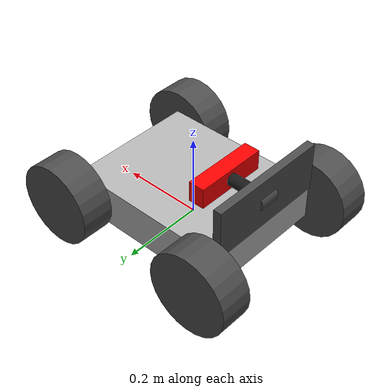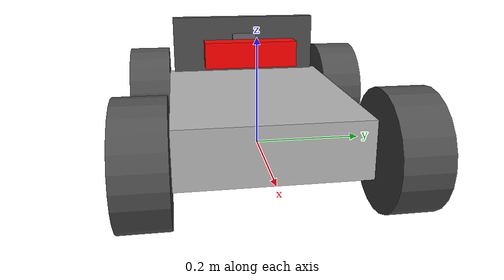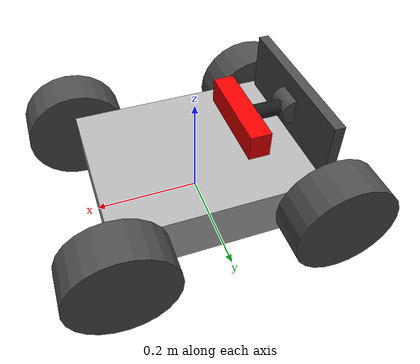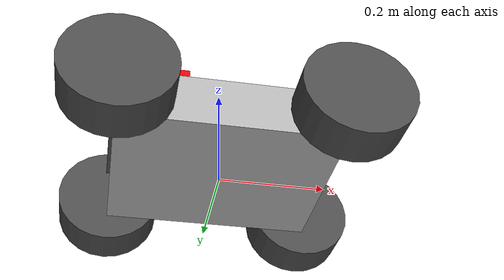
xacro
<?xml version="1.0"?>
<robot xmlns:xacro="http://www.ros.org/wiki/xacro" name="runner_bot">

  <xacro:arg name="robot_ns" default="runner1"/>

  <xacro:include filename="$(find sr_description)/urdf/material.urdf.xacro"/>
  <xacro:include filename="$(find sr_description)/urdf/base.urdf.xacro"/>
  <xacro:include filename="$(find sr_description)/urdf/wheel.urdf.xacro"/>
  <xacro:include filename="$(find sr_description)/urdf/wall.urdf.xacro"/>
  <xacro:include filename="$(find sr_description)/urdf/actuator.urdf.xacro"/>
  <xacro:include filename="$(find sr_description)/urdf/runner_gazebo.urdf.xacro"/>

  <xacro:create_base/>
  <xacro:create_wheels/>
  <xacro:create_piston/>
  <xacro:create_wall/>
  <xacro:gazebo_setup_runner robot_ns="$(arg robot_ns)" />

</robot>

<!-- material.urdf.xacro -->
<robot xmlns:xacro="http://www.ros.org/wiki/xacro" name="materials">

  <!-- ========================================
       MATERIALS AND COLORS
       ======================================== -->

  <material name="grey">
    <color rgba="0.7 0.7 0.7 1.0"/>
  </material>

  <material name="dark_grey">
    <color rgba="0.3 0.3 0.3 1.0"/>
  </material>

  <material name="black">
    <color rgba="0.1 0.1 0.1 1.0"/>
  </material>

  <material name="red">
    <color rgba="1.0 0.0 0.0 1.0"/>
  </material>

  <material name="green">
    <color rgba="0.0 1.0 0.0 1.0"/>
  </material>

  <material name="blue">
    <color rgba="0.0 0.0 1.0 1.0"/>
  </material>

</robot>

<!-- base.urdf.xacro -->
<robot xmlns:xacro="http://www.ros.org/wiki/xacro">

  <xacro:macro name="create_base">

    <!-- Ground reference frame -->
    <link name="base_footprint"/>

    <!-- Actual robot body -->
    <link name="base_link">
      <visual>
        <origin xyz="0 0 0"/>
        <geometry>
          <box size="0.40 0.32 0.1"/>
        </geometry>
        <material name="grey"/>
      </visual>

      <collision>
        <origin xyz="0 0 0"/>
        <geometry>
          <box size="0.40 0.32 0.1"/>
        </geometry>
      </collision>

      <inertial>
        <origin xyz="0 0 0"/>
        <mass value="3.0"/>
        <inertia ixx="0.1" iyy="0.1" izz="0.1"
                ixy="0" ixz="0" iyz="0"/>
      </inertial>
    </link>

    <!-- base_link sits above ground -->
    <joint name="base_footprint_to_base_link" type="fixed">
      <parent link="base_footprint"/>
      <child link="base_link"/>
      <origin xyz="0 0 0.05"/>
    </joint>

    <!-- ================= ARM MOUNT ================= -->

    <link name="arm_base_link"/>

    <joint name="arm_mount_joint" type="fixed">
      <parent link="base_link"/>
      <child link="arm_base_link"/>
      <origin xyz="0.16 0 0.06"/>
    </joint>

  </xacro:macro>

</robot>

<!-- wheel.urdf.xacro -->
<robot xmlns:xacro="http://www.ros.org/wiki/xacro">

  <xacro:macro name="create_wheels">

    <!-- ================= FRONT LEFT WHEEL ================= -->
    <!-- Position: +X (front), +Y (left) -->
    <link name="wheel_fl_link">
      <visual>
        <origin xyz="0 0 0" rpy="1.5708 0 0"/>
        <geometry>
          <cylinder radius="0.1" length="0.08"/>
        </geometry>
        <material name="dark_grey"/>
      </visual>

      <collision>
        <origin xyz="0 0 0" rpy="1.5708 0 0"/>
        <geometry>
          <cylinder radius="0.1" length="0.08"/>
        </geometry>
      </collision>

      <inertial>
        <origin xyz="0 0 0"/>
        <mass value="0.5"/>
        <inertia ixx="0.000417" iyy="0.0005" izz="0.000417" ixy="0" ixz="0" iyz="0"/>
      </inertial>
    </link>

    <!-- Front Left Joint -->
    <joint name="wheel_fl_joint" type="continuous">
      <parent link="base_link"/>
      <child link="wheel_fl_link"/>
      <origin xyz="0.20 0.20 0.0" rpy="0 0 0"/>
      <axis xyz="0 1 0"/>
      <limit effort="100.0" velocity="40.0" lower="-1000.0" upper="1000.0"/>
      <dynamics damping="0.05" friction="0.1"/>
    </joint>

    <!-- ================= FRONT RIGHT WHEEL ================= -->
    <!-- Position: +X (front), -Y (right) -->
    <link name="wheel_fr_link">
      <visual>
        <origin xyz="0 0 0" rpy="1.5708 0 0"/>
        <geometry>
          <cylinder radius="0.1" length="0.08"/>
        </geometry>
        <material name="dark_grey"/>
      </visual>

      <collision>
        <origin xyz="0 0 0" rpy="1.5708 0 0"/>
        <geometry>
          <cylinder radius="0.1" length="0.08"/>
        </geometry>
      </collision>

      <inertial>
        <origin xyz="0 0 0"/>
        <mass value="0.5"/>
        <inertia ixx="0.000417" iyy="0.0005" izz="0.000417" ixy="0" ixz="0" iyz="0"/>
      </inertial>
    </link>

    <!-- Front Right Joint -->
    <joint name="wheel_fr_joint" type="continuous">
      <parent link="base_link"/>
      <child link="wheel_fr_link"/>
      <origin xyz="0.20 -0.20 0.0" rpy="0 0 0"/>
      <axis xyz="0 1 0"/>
      <limit effort="100.0" velocity="40.0" lower="-1000.0" upper="1000.0"/>
      <dynamics damping="0.05" friction="0.1"/>
    </joint>

    <!-- ================= REAR LEFT WHEEL ================= -->
    <!-- Position: -X (back), +Y (left) -->
    <link name="wheel_bl_link">
      <visual>
        <origin xyz="0 0 0" rpy="1.5708 0 0"/>
        <geometry>
          <cylinder radius="0.1" length="0.08"/>
        </geometry>
        <material name="dark_grey"/>
      </visual>

      <collision>
        <origin xyz="0 0 0" rpy="1.5708 0 0"/>
        <geometry>
          <cylinder radius="0.1" length="0.08"/>
        </geometry>
      </collision>

      <inertial>
        <origin xyz="0 0 0"/>
        <mass value="0.5"/>
        <inertia ixx="0.000417" iyy="0.0005" izz="0.000417" ixy="0" ixz="0" iyz="0"/>
      </inertial>
    </link>

    <!-- Rear Left Joint -->
    <joint name="wheel_bl_joint" type="continuous">
      <parent link="base_link"/>
      <child link="wheel_bl_link"/>
      <origin xyz="-0.20 0.20 0.0" rpy="0 0 0"/>
      <axis xyz="0 1 0"/>
      <limit effort="100.0" velocity="40.0" lower="-1000.0" upper="1000.0"/>
      <dynamics damping="0.05" friction="0.1"/>
    </joint>

    <!-- ================= REAR RIGHT WHEEL ================= -->
    <!-- Position: -X (back), -Y (right) -->
    <link name="wheel_br_link">
      <visual>
        <origin xyz="0 0 0" rpy="1.5708 0 0"/>
        <geometry>
          <cylinder radius="0.1" length="0.08"/>
        </geometry>
        <material name="dark_grey"/>
      </visual>

      <collision>
        <origin xyz="0 0 0" rpy="1.5708 0 0"/>
        <geometry>
          <cylinder radius="0.1" length="0.08"/>
        </geometry>
      </collision>

      <inertial>
        <origin xyz="0 0 0"/>
        <mass value="0.5"/>
        <inertia ixx="0.000417" iyy="0.0005" izz="0.000417" ixy="0" ixz="0" iyz="0"/>
      </inertial>
    </link>

    <!-- Rear Right Joint -->
    <joint name="wheel_br_joint" type="continuous">
      <parent link="base_link"/>
      <child link="wheel_br_link"/>
      <origin xyz="-0.20 -0.20 0.0" rpy="0 0 0"/>
      <axis xyz="0 1 0"/>
      <limit effort="100.0" velocity="40.0" lower="-1000.0" upper="1000.0"/>
      <dynamics damping="0.05" friction="0.1"/>
    </joint>

  </xacro:macro>

</robot>

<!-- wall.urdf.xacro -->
<robot xmlns:xacro="http://www.ros.org/wiki/xacro" name="wall">

  <!-- ========================================
       BACK WALL - FOR PISTON MOUNTING
       L-shaped back barrier on top of chassis
       ======================================== -->

  <!-- Wall parameters -->
  <xacro:property name="wall_length" value="0.30"/>      <!-- Full width of chassis -->
  <xacro:property name="wall_height" value="0.12"/>      <!-- Height of wall -->
  <xacro:property name="wall_thickness" value="0.02"/>   <!-- Thickness -->
  <xacro:property name="wall_mass" value="1.0"/>

  <xacro:macro name="create_wall">

    <!-- ===== BACK WALL (L-shaped support) ===== -->
    <link name="back_wall">
      <inertial>
        <origin xyz="0 0 0" rpy="0 0 0"/>
        <mass value="${wall_mass}"/>
        <!-- Vertical wall inertia -->
        <inertia
          ixx="${wall_mass * (wall_height*wall_height + wall_thickness*wall_thickness) / 12}"
          iyy="${wall_mass * (wall_length*wall_length + wall_thickness*wall_thickness) / 12}"
          izz="${wall_mass * (wall_length*wall_length + wall_height*wall_height) / 12}"
          ixy="0" ixz="0" iyz="0"/>
      </inertial>

      <!-- Visual: Vertical rectangular wall -->
      <visual>
        <!-- Wall positioned at back center, goes up -->
        <origin xyz="0 ${-wall_length/2} ${wall_height/2}" rpy="0 0 0"/>
        <geometry>
          <box size="${wall_thickness} ${wall_length} ${wall_height}"/>
        </geometry>
        <material name="dark_grey"/>
      </visual>

      <!-- Collision: Same wall shape -->
      <collision>
        <origin xyz="0 ${-wall_length/2} ${wall_height/2}" rpy="0 0 0"/>
        <geometry>
          <box size="${wall_thickness} ${wall_length} ${wall_height}"/>
        </geometry>
      </collision>
    </link>

    <!-- Mount wall on top of chassis at back -->
    <joint name="wall_joint" type="fixed">
      <parent link="base_link"/>
      <child link="back_wall"/>
      <!-- Back of chassis, on top -->
      <origin xyz="${-0.2} ${wall_length/2} ${0.045}" rpy="0 0 0"/>
    </joint>

  </xacro:macro>

</robot>

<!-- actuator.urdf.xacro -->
<robot xmlns:xacro="http://www.ros.org/wiki/xacro" name="piston">

  <!-- Piston parameters -->
  <xacro:property name="piston_base_length" value="0.05"/>
  <xacro:property name="piston_rod_length" value="0.1"/>
  <xacro:property name="piston_rod_radius" value="0.015"/>
  <xacro:property name="piston_base_radius" value="0.025"/>
  <xacro:property name="piston_mass" value="2.0"/>
  <xacro:property name="chassis_length" value="0.32"/>

  <xacro:macro name="create_piston">

    <!-- ================= BASE ================= -->
    <link name="piston_base">
      <inertial>
        <origin xyz="0 0 0"/>
        <mass value="0.3"/>
        <inertia ixx="0.001" iyy="0.001" izz="0.001"
                 ixy="0" ixz="0" iyz="0"/>
      </inertial>

      <visual>
        <origin xyz="0 0 0" rpy="1.5708 0 0"/>
        <geometry>
          <cylinder radius="${piston_base_radius}"
                    length="${piston_base_length}"/>
        </geometry>
        <material name="dark_grey"/>
      </visual>

      <collision>
        <origin xyz="0 0 0" rpy="1.5708 0 0"/>
        <geometry>
          <cylinder radius="${piston_base_radius}"
                    length="${piston_base_length}"/>
        </geometry>
      </collision>
    </link>

    <!-- Fixed to wall -->
    <joint name="piston_base_joint" type="fixed">
      <parent link="back_wall"/>
      <child link="piston_base"/>
      <origin xyz="0.01 -0.15 0.06"/>
    </joint>

    <!-- ================= ROD ================= -->
    <link name="piston_rod">
      <inertial>
        <origin xyz="${piston_rod_length/2} 0 0" rpy="0 0 0"/>
        <mass value="${piston_mass}"/>
        <inertia
          ixx="${piston_mass * piston_rod_radius * piston_rod_radius / 4}"
          iyy="${piston_mass * (piston_rod_radius*piston_rod_radius + piston_rod_length*piston_rod_length) / 12}"
          izz="${piston_mass * (piston_rod_radius*piston_rod_radius + piston_rod_length*piston_rod_length) / 12}"
          ixy="0" ixz="0" iyz="0"/>
      </inertial>

      <!-- Rod starts at joint, extends forward -->
      <visual>
        <origin xyz="${piston_rod_length/2} 0 0" rpy="0 1.5708 0"/>
        <geometry>
          <cylinder radius="${piston_rod_radius}" length="${piston_rod_length}"/>
        </geometry>
        <material name="black"/>
      </visual>

      <collision>
        <origin xyz="${piston_rod_length/2} 0 0" rpy="0 1.5708 0"/>
        <geometry>
          <cylinder radius="${piston_rod_radius}" length="${piston_rod_length}"/>
        </geometry>
      </collision>
    </link>

    <!-- ================= PRISMATIC JOINT ================= -->
    <joint name="piston_rod_joint" type="prismatic">
      <parent link="piston_base"/>
      <child link="piston_rod"/>
      <origin xyz="0 0 0"/>
      <axis xyz="1 0 0"/>

      <!-- Starts retracted at 0 -->
      <limit lower="0" upper="${chassis_length}"
             effort="100" velocity="0.5"/>

      <dynamics damping="10" friction="0.5"/>
    </joint>

    <!-- ================= PUSHER HEAD ================= -->
    <link name="piston_head">
      <inertial>
        <origin xyz="0 0 0"/>
        <mass value="0.2"/>
        <inertia ixx="0.001" iyy="0.001" izz="0.001"
                 ixy="0" ixz="0" iyz="0"/>
      </inertial>

      <visual>
        <geometry>
          <box size="0.04 0.18 0.05"/>
        </geometry>
        <material name="red"/>
      </visual>

      <collision>
        <geometry>
          <box size="0.04 0.18 0.05"/>
        </geometry>
      </collision>
    </link>

    <!-- Head at rod tip -->
    <joint name="piston_head_joint" type="fixed">
      <parent link="piston_rod"/>
      <child link="piston_head"/>
      <origin xyz="${piston_rod_length} 0 0" rpy="0 0 0"/>
    </joint>

  </xacro:macro>

</robot>
